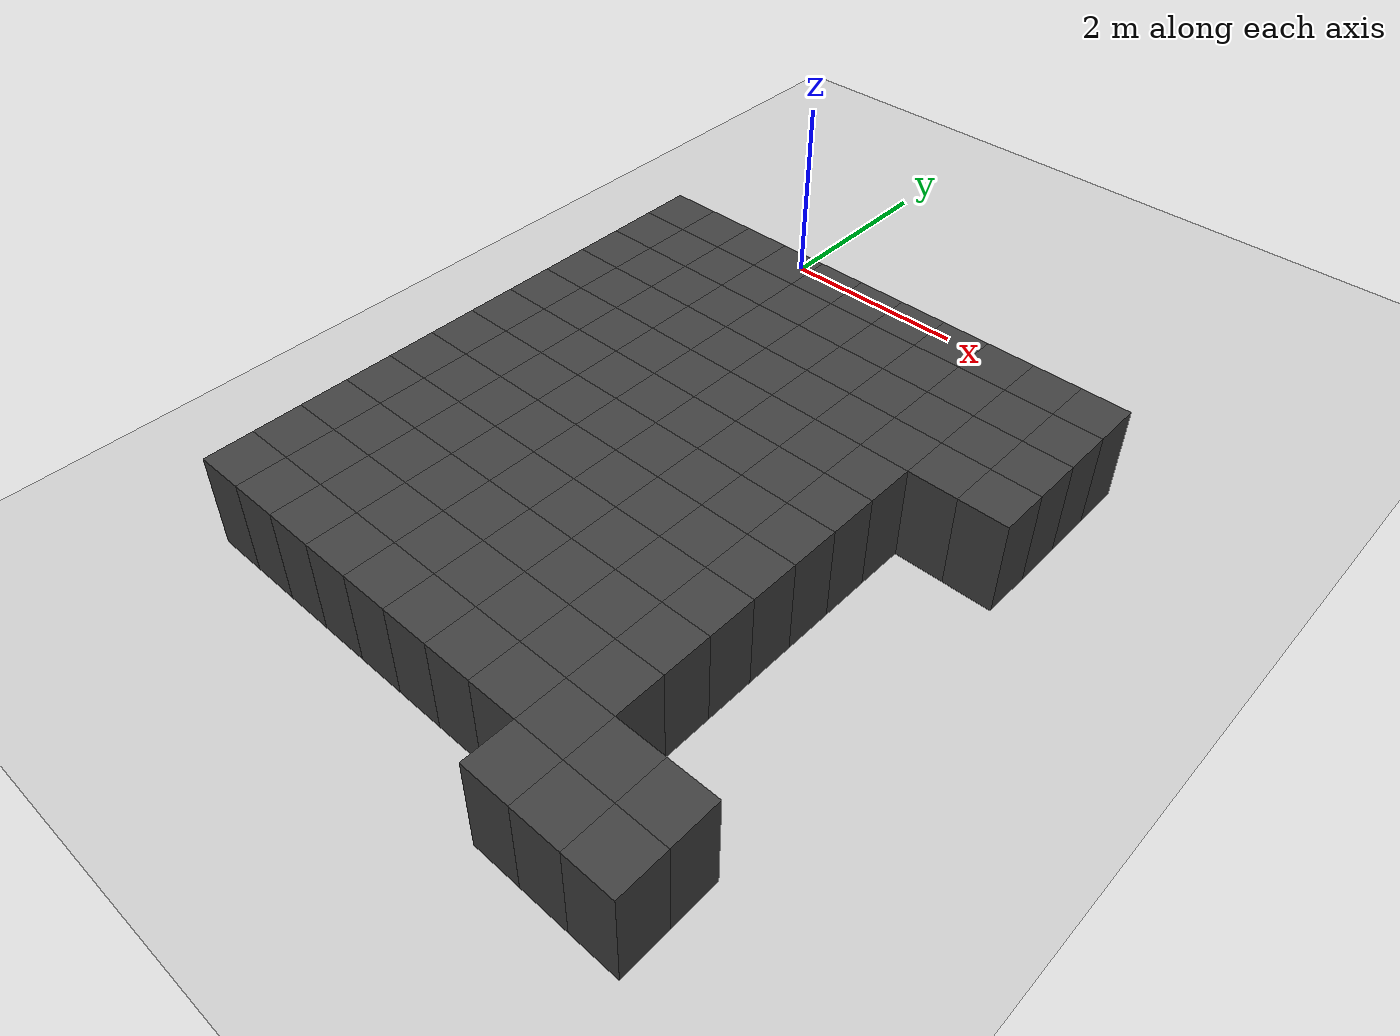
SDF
<sdf version="1.7">
 <world name="map_14706">
  <model name="ground_plane">
   <static>true</static>
   <link name="link">
    <collision name="collision">
     <geometry><plane><normal>0 0 1</normal><size>200 200</size></plane></geometry>
    </collision>
    <visual name="visual">
     <geometry><plane><normal>0 0 1</normal><size>200 200</size></plane></geometry>
     <material><ambient>0.8 0.8 0.8 1</ambient><diffuse>0.8 0.8 0.8 1</diffuse></material>
    </visual>
   </link>
  </model>
  <model name="maze_environment">
   <static>true</static>
   <link name="wall_921">
    <pose>-0.750 -1.250 0.500 0 0 0</pose>
    <collision name="col"><geometry><box><size>0.5 0.5 1.0</size></box></geometry></collision>
    <visual name="vis">
     <geometry><box><size>0.5 0.5 1.0</size></box></geometry>
     <material><ambient>0.15 0.15 0.15 1</ambient><diffuse>0.25 0.25 0.25 1</diffuse></material>
    </visual>
   </link>
   <link name="wall_922">
    <pose>-0.250 -1.250 0.500 0 0 0</pose>
    <collision name="col"><geometry><box><size>0.5 0.5 1.0</size></box></geometry></collision>
    <visual name="vis">
     <geometry><box><size>0.5 0.5 1.0</size></box></geometry>
     <material><ambient>0.15 0.15 0.15 1</ambient><diffuse>0.25 0.25 0.25 1</diffuse></material>
    </visual>
   </link>
   <link name="wall_923">
    <pose>0.250 -1.250 0.500 0 0 0</pose>
    <collision name="col"><geometry><box><size>0.5 0.5 1.0</size></box></geometry></collision>
    <visual name="vis">
     <geometry><box><size>0.5 0.5 1.0</size></box></geometry>
     <material><ambient>0.15 0.15 0.15 1</ambient><diffuse>0.25 0.25 0.25 1</diffuse></material>
    </visual>
   </link>
   <link name="wall_924">
    <pose>0.750 -1.250 0.500 0 0 0</pose>
    <collision name="col"><geometry><box><size>0.5 0.5 1.0</size></box></geometry></collision>
    <visual name="vis">
     <geometry><box><size>0.5 0.5 1.0</size></box></geometry>
     <material><ambient>0.15 0.15 0.15 1</ambient><diffuse>0.25 0.25 0.25 1</diffuse></material>
    </visual>
   </link>
   <link name="wall_925">
    <pose>1.250 -1.250 0.500 0 0 0</pose>
    <collision name="col"><geometry><box><size>0.5 0.5 1.0</size></box></geometry></collision>
    <visual name="vis">
     <geometry><box><size>0.5 0.5 1.0</size></box></geometry>
     <material><ambient>0.15 0.15 0.15 1</ambient><diffuse>0.25 0.25 0.25 1</diffuse></material>
    </visual>
   </link>
   <link name="wall_926">
    <pose>1.750 -1.250 0.500 0 0 0</pose>
    <collision name="col"><geometry><box><size>0.5 0.5 1.0</size></box></geometry></collision>
    <visual name="vis">
     <geometry><box><size>0.5 0.5 1.0</size></box></geometry>
     <material><ambient>0.15 0.15 0.15 1</ambient><diffuse>0.25 0.25 0.25 1</diffuse></material>
    </visual>
   </link>
   <link name="wall_927">
    <pose>2.250 -1.250 0.500 0 0 0</pose>
    <collision name="col"><geometry><box><size>0.5 0.5 1.0</size></box></geometry></collision>
    <visual name="vis">
     <geometry><box><size>0.5 0.5 1.0</size></box></geometry>
     <material><ambient>0.15 0.15 0.15 1</ambient><diffuse>0.25 0.25 0.25 1</diffuse></material>
    </visual>
   </link>
   <link name="wall_928">
    <pose>2.750 -1.250 0.500 0 0 0</pose>
    <collision name="col"><geometry><box><size>0.5 0.5 1.0</size></box></geometry></collision>
    <visual name="vis">
     <geometry><box><size>0.5 0.5 1.0</size></box></geometry>
     <material><ambient>0.15 0.15 0.15 1</ambient><diffuse>0.25 0.25 0.25 1</diffuse></material>
    </visual>
   </link>
   <link name="wall_929">
    <pose>3.250 -1.250 0.500 0 0 0</pose>
    <collision name="col"><geometry><box><size>0.5 0.5 1.0</size></box></geometry></collision>
    <visual name="vis">
     <geometry><box><size>0.5 0.5 1.0</size></box></geometry>
     <material><ambient>0.15 0.15 0.15 1</ambient><diffuse>0.25 0.25 0.25 1</diffuse></material>
    </visual>
   </link>
   <link name="wall_930">
    <pose>3.750 -1.250 0.500 0 0 0</pose>
    <collision name="col"><geometry><box><size>0.5 0.5 1.0</size></box></geometry></collision>
    <visual name="vis">
     <geometry><box><size>0.5 0.5 1.0</size></box></geometry>
     <material><ambient>0.15 0.15 0.15 1</ambient><diffuse>0.25 0.25 0.25 1</diffuse></material>
    </visual>
   </link>
   <link name="wall_931">
    <pose>4.250 -1.250 0.500 0 0 0</pose>
    <collision name="col"><geometry><box><size>0.5 0.5 1.0</size></box></geometry></collision>
    <visual name="vis">
     <geometry><box><size>0.5 0.5 1.0</size></box></geometry>
     <material><ambient>0.15 0.15 0.15 1</ambient><diffuse>0.25 0.25 0.25 1</diffuse></material>
    </visual>
   </link>
   <link name="wall_963">
    <pose>-0.750 -1.750 0.500 0 0 0</pose>
    <collision name="col"><geometry><box><size>0.5 0.5 1.0</size></box></geometry></collision>
    <visual name="vis">
     <geometry><box><size>0.5 0.5 1.0</size></box></geometry>
     <material><ambient>0.15 0.15 0.15 1</ambient><diffuse>0.25 0.25 0.25 1</diffuse></material>
    </visual>
   </link>
   <link name="wall_964">
    <pose>-0.250 -1.750 0.500 0 0 0</pose>
    <collision name="col"><geometry><box><size>0.5 0.5 1.0</size></box></geometry></collision>
    <visual name="vis">
     <geometry><box><size>0.5 0.5 1.0</size></box></geometry>
     <material><ambient>0.15 0.15 0.15 1</ambient><diffuse>0.25 0.25 0.25 1</diffuse></material>
    </visual>
   </link>
   <link name="wall_965">
    <pose>0.250 -1.750 0.500 0 0 0</pose>
    <collision name="col"><geometry><box><size>0.5 0.5 1.0</size></box></geometry></collision>
    <visual name="vis">
     <geometry><box><size>0.5 0.5 1.0</size></box></geometry>
     <material><ambient>0.15 0.15 0.15 1</ambient><diffuse>0.25 0.25 0.25 1</diffuse></material>
    </visual>
   </link>
   <link name="wall_966">
    <pose>0.750 -1.750 0.500 0 0 0</pose>
    <collision name="col"><geometry><box><size>0.5 0.5 1.0</size></box></geometry></collision>
    <visual name="vis">
     <geometry><box><size>0.5 0.5 1.0</size></box></geometry>
     <material><ambient>0.15 0.15 0.15 1</ambient><diffuse>0.25 0.25 0.25 1</diffuse></material>
    </visual>
   </link>
   <link name="wall_967">
    <pose>1.250 -1.750 0.500 0 0 0</pose>
    <collision name="col"><geometry><box><size>0.5 0.5 1.0</size></box></geometry></collision>
    <visual name="vis">
     <geometry><box><size>0.5 0.5 1.0</size></box></geometry>
     <material><ambient>0.15 0.15 0.15 1</ambient><diffuse>0.25 0.25 0.25 1</diffuse></material>
    </visual>
   </link>
   <link name="wall_968">
    <pose>1.750 -1.750 0.500 0 0 0</pose>
    <collision name="col"><geometry><box><size>0.5 0.5 1.0</size></box></geometry></collision>
    <visual name="vis">
     <geometry><box><size>0.5 0.5 1.0</size></box></geometry>
     <material><ambient>0.15 0.15 0.15 1</ambient><diffuse>0.25 0.25 0.25 1</diffuse></material>
    </visual>
   </link>
   <link name="wall_969">
    <pose>2.250 -1.750 0.500 0 0 0</pose>
    <collision name="col"><geometry><box><size>0.5 0.5 1.0</size></box></geometry></collision>
    <visual name="vis">
     <geometry><box><size>0.5 0.5 1.0</size></box></geometry>
     <material><ambient>0.15 0.15 0.15 1</ambient><diffuse>0.25 0.25 0.25 1</diffuse></material>
    </visual>
   </link>
   <link name="wall_970">
    <pose>2.750 -1.750 0.500 0 0 0</pose>
    <collision name="col"><geometry><box><size>0.5 0.5 1.0</size></box></geometry></collision>
    <visual name="vis">
     <geometry><box><size>0.5 0.5 1.0</size></box></geometry>
     <material><ambient>0.15 0.15 0.15 1</ambient><diffuse>0.25 0.25 0.25 1</diffuse></material>
    </visual>
   </link>
   <link name="wall_971">
    <pose>3.250 -1.750 0.500 0 0 0</pose>
    <collision name="col"><geometry><box><size>0.5 0.5 1.0</size></box></geometry></collision>
    <visual name="vis">
     <geometry><box><size>0.5 0.5 1.0</size></box></geometry>
     <material><ambient>0.15 0.15 0.15 1</ambient><diffuse>0.25 0.25 0.25 1</diffuse></material>
    </visual>
   </link>
   <link name="wall_972">
    <pose>3.750 -1.750 0.500 0 0 0</pose>
    <collision name="col"><geometry><box><size>0.5 0.5 1.0</size></box></geometry></collision>
    <visual name="vis">
     <geometry><box><size>0.5 0.5 1.0</size></box></geometry>
     <material><ambient>0.15 0.15 0.15 1</ambient><diffuse>0.25 0.25 0.25 1</diffuse></material>
    </visual>
   </link>
   <link name="wall_973">
    <pose>4.250 -1.750 0.500 0 0 0</pose>
    <collision name="col"><geometry><box><size>0.5 0.5 1.0</size></box></geometry></collision>
    <visual name="vis">
     <geometry><box><size>0.5 0.5 1.0</size></box></geometry>
     <material><ambient>0.15 0.15 0.15 1</ambient><diffuse>0.25 0.25 0.25 1</diffuse></material>
    </visual>
   </link>
   <link name="wall_1005">
    <pose>-0.750 -2.250 0.500 0 0 0</pose>
    <collision name="col"><geometry><box><size>0.5 0.5 1.0</size></box></geometry></collision>
    <visual name="vis">
     <geometry><box><size>0.5 0.5 1.0</size></box></geometry>
     <material><ambient>0.15 0.15 0.15 1</ambient><diffuse>0.25 0.25 0.25 1</diffuse></material>
    </visual>
   </link>
   <link name="wall_1006">
    <pose>-0.250 -2.250 0.500 0 0 0</pose>
    <collision name="col"><geometry><box><size>0.5 0.5 1.0</size></box></geometry></collision>
    <visual name="vis">
     <geometry><box><size>0.5 0.5 1.0</size></box></geometry>
     <material><ambient>0.15 0.15 0.15 1</ambient><diffuse>0.25 0.25 0.25 1</diffuse></material>
    </visual>
   </link>
   <link name="wall_1007">
    <pose>0.250 -2.250 0.500 0 0 0</pose>
    <collision name="col"><geometry><box><size>0.5 0.5 1.0</size></box></geometry></collision>
    <visual name="vis">
     <geometry><box><size>0.5 0.5 1.0</size></box></geometry>
     <material><ambient>0.15 0.15 0.15 1</ambient><diffuse>0.25 0.25 0.25 1</diffuse></material>
    </visual>
   </link>
   <link name="wall_1008">
    <pose>0.750 -2.250 0.500 0 0 0</pose>
    <collision name="col"><geometry><box><size>0.5 0.5 1.0</size></box></geometry></collision>
    <visual name="vis">
     <geometry><box><size>0.5 0.5 1.0</size></box></geometry>
     <material><ambient>0.15 0.15 0.15 1</ambient><diffuse>0.25 0.25 0.25 1</diffuse></material>
    </visual>
   </link>
   <link name="wall_1009">
    <pose>1.250 -2.250 0.500 0 0 0</pose>
    <collision name="col"><geometry><box><size>0.5 0.5 1.0</size></box></geometry></collision>
    <visual name="vis">
     <geometry><box><size>0.5 0.5 1.0</size></box></geometry>
     <material><ambient>0.15 0.15 0.15 1</ambient><diffuse>0.25 0.25 0.25 1</diffuse></material>
    </visual>
   </link>
   <link name="wall_1010">
    <pose>1.750 -2.250 0.500 0 0 0</pose>
    <collision name="col"><geometry><box><size>0.5 0.5 1.0</size></box></geometry></collision>
    <visual name="vis">
     <geometry><box><size>0.5 0.5 1.0</size></box></geometry>
     <material><ambient>0.15 0.15 0.15 1</ambient><diffuse>0.25 0.25 0.25 1</diffuse></material>
    </visual>
   </link>
   <link name="wall_1011">
    <pose>2.250 -2.250 0.500 0 0 0</pose>
    <collision name="col"><geometry><box><size>0.5 0.5 1.0</size></box></geometry></collision>
    <visual name="vis">
     <geometry><box><size>0.5 0.5 1.0</size></box></geometry>
     <material><ambient>0.15 0.15 0.15 1</ambient><diffuse>0.25 0.25 0.25 1</diffuse></material>
    </visual>
   </link>
   <link name="wall_1012">
    <pose>2.750 -2.250 0.500 0 0 0</pose>
    <collision name="col"><geometry><box><size>0.5 0.5 1.0</size></box></geometry></collision>
    <visual name="vis">
     <geometry><box><size>0.5 0.5 1.0</size></box></geometry>
     <material><ambient>0.15 0.15 0.15 1</ambient><diffuse>0.25 0.25 0.25 1</diffuse></material>
    </visual>
   </link>
   <link name="wall_1013">
    <pose>3.250 -2.250 0.500 0 0 0</pose>
    <collision name="col"><geometry><box><size>0.5 0.5 1.0</size></box></geometry></collision>
    <visual name="vis">
     <geometry><box><size>0.5 0.5 1.0</size></box></geometry>
     <material><ambient>0.15 0.15 0.15 1</ambient><diffuse>0.25 0.25 0.25 1</diffuse></material>
    </visual>
   </link>
   <link name="wall_1014">
    <pose>3.750 -2.250 0.500 0 0 0</pose>
    <collision name="col"><geometry><box><size>0.5 0.5 1.0</size></box></geometry></collision>
    <visual name="vis">
     <geometry><box><size>0.5 0.5 1.0</size></box></geometry>
     <material><ambient>0.15 0.15 0.15 1</ambient><diffuse>0.25 0.25 0.25 1</diffuse></material>
    </visual>
   </link>
   <link name="wall_1015">
    <pose>4.250 -2.250 0.500 0 0 0</pose>
    <collision name="col"><geometry><box><size>0.5 0.5 1.0</size></box></geometry></collision>
    <visual name="vis">
     <geometry><box><size>0.5 0.5 1.0</size></box></geometry>
     <material><ambient>0.15 0.15 0.15 1</ambient><diffuse>0.25 0.25 0.25 1</diffuse></material>
    </visual>
   </link>
   <link name="wall_1047">
    <pose>-0.750 -2.750 0.500 0 0 0</pose>
    <collision name="col"><geometry><box><size>0.5 0.5 1.0</size></box></geometry></collision>
    <visual name="vis">
     <geometry><box><size>0.5 0.5 1.0</size></box></geometry>
     <material><ambient>0.15 0.15 0.15 1</ambient><diffuse>0.25 0.25 0.25 1</diffuse></material>
    </visual>
   </link>
   <link name="wall_1048">
    <pose>-0.250 -2.750 0.500 0 0 0</pose>
    <collision name="col"><geometry><box><size>0.5 0.5 1.0</size></box></geometry></collision>
    <visual name="vis">
     <geometry><box><size>0.5 0.5 1.0</size></box></geometry>
     <material><ambient>0.15 0.15 0.15 1</ambient><diffuse>0.25 0.25 0.25 1</diffuse></material>
    </visual>
   </link>
   <link name="wall_1049">
    <pose>0.250 -2.750 0.500 0 0 0</pose>
    <collision name="col"><geometry><box><size>0.5 0.5 1.0</size></box></geometry></collision>
    <visual name="vis">
     <geometry><box><size>0.5 0.5 1.0</size></box></geometry>
     <material><ambient>0.15 0.15 0.15 1</ambient><diffuse>0.25 0.25 0.25 1</diffuse></material>
    </visual>
   </link>
   <link name="wall_1050">
    <pose>0.750 -2.750 0.500 0 0 0</pose>
    <collision name="col"><geometry><box><size>0.5 0.5 1.0</size></box></geometry></collision>
    <visual name="vis">
     <geometry><box><size>0.5 0.5 1.0</size></box></geometry>
     <material><ambient>0.15 0.15 0.15 1</ambient><diffuse>0.25 0.25 0.25 1</diffuse></material>
    </visual>
   </link>
   <link name="wall_1051">
    <pose>1.250 -2.750 0.500 0 0 0</pose>
    <collision name="col"><geometry><box><size>0.5 0.5 1.0</size></box></geometry></collision>
    <visual name="vis">
     <geometry><box><size>0.5 0.5 1.0</size></box></geometry>
     <material><ambient>0.15 0.15 0.15 1</ambient><diffuse>0.25 0.25 0.25 1</diffuse></material>
    </visual>
   </link>
   <link name="wall_1052">
    <pose>1.750 -2.750 0.500 0 0 0</pose>
    <collision name="col"><geometry><box><size>0.5 0.5 1.0</size></box></geometry></collision>
    <visual name="vis">
     <geometry><box><size>0.5 0.5 1.0</size></box></geometry>
     <material><ambient>0.15 0.15 0.15 1</ambient><diffuse>0.25 0.25 0.25 1</diffuse></material>
    </visual>
   </link>
   <link name="wall_1053">
    <pose>2.250 -2.750 0.500 0 0 0</pose>
    <collision name="col"><geometry><box><size>0.5 0.5 1.0</size></box></geometry></collision>
    <visual name="vis">
     <geometry><box><size>0.5 0.5 1.0</size></box></geometry>
     <material><ambient>0.15 0.15 0.15 1</ambient><diffuse>0.25 0.25 0.25 1</diffuse></material>
    </visual>
   </link>
   <link name="wall_1054">
    <pose>2.750 -2.750 0.500 0 0 0</pose>
    <collision name="col"><geometry><box><size>0.5 0.5 1.0</size></box></geometry></collision>
    <visual name="vis">
     <geometry><box><size>0.5 0.5 1.0</size></box></geometry>
     <material><ambient>0.15 0.15 0.15 1</ambient><diffuse>0.25 0.25 0.25 1</diffuse></material>
    </visual>
   </link>
   <link name="wall_1055">
    <pose>3.250 -2.750 0.500 0 0 0</pose>
    <collision name="col"><geometry><box><size>0.5 0.5 1.0</size></box></geometry></collision>
    <visual name="vis">
     <geometry><box><size>0.5 0.5 1.0</size></box></geometry>
     <material><ambient>0.15 0.15 0.15 1</ambient><diffuse>0.25 0.25 0.25 1</diffuse></material>
    </visual>
   </link>
   <link name="wall_1056">
    <pose>3.750 -2.750 0.500 0 0 0</pose>
    <collision name="col"><geometry><box><size>0.5 0.5 1.0</size></box></geometry></collision>
    <visual name="vis">
     <geometry><box><size>0.5 0.5 1.0</size></box></geometry>
     <material><ambient>0.15 0.15 0.15 1</ambient><diffuse>0.25 0.25 0.25 1</diffuse></material>
    </visual>
   </link>
   <link name="wall_1057">
    <pose>4.250 -2.750 0.500 0 0 0</pose>
    <collision name="col"><geometry><box><size>0.5 0.5 1.0</size></box></geometry></collision>
    <visual name="vis">
     <geometry><box><size>0.5 0.5 1.0</size></box></geometry>
     <material><ambient>0.15 0.15 0.15 1</ambient><diffuse>0.25 0.25 0.25 1</diffuse></material>
    </visual>
   </link>
   <link name="wall_1089">
    <pose>-0.750 -3.250 0.500 0 0 0</pose>
    <collision name="col"><geometry><box><size>0.5 0.5 1.0</size></box></geometry></collision>
    <visual name="vis">
     <geometry><box><size>0.5 0.5 1.0</size></box></geometry>
     <material><ambient>0.15 0.15 0.15 1</ambient><diffuse>0.25 0.25 0.25 1</diffuse></material>
    </visual>
   </link>
   <link name="wall_1090">
    <pose>-0.250 -3.250 0.500 0 0 0</pose>
    <collision name="col"><geometry><box><size>0.5 0.5 1.0</size></box></geometry></collision>
    <visual name="vis">
     <geometry><box><size>0.5 0.5 1.0</size></box></geometry>
     <material><ambient>0.15 0.15 0.15 1</ambient><diffuse>0.25 0.25 0.25 1</diffuse></material>
    </visual>
   </link>
   <link name="wall_1091">
    <pose>0.250 -3.250 0.500 0 0 0</pose>
    <collision name="col"><geometry><box><size>0.5 0.5 1.0</size></box></geometry></collision>
    <visual name="vis">
     <geometry><box><size>0.5 0.5 1.0</size></box></geometry>
     <material><ambient>0.15 0.15 0.15 1</ambient><diffuse>0.25 0.25 0.25 1</diffuse></material>
    </visual>
   </link>
   <link name="wall_1092">
    <pose>0.750 -3.250 0.500 0 0 0</pose>
    <collision name="col"><geometry><box><size>0.5 0.5 1.0</size></box></geometry></collision>
    <visual name="vis">
     <geometry><box><size>0.5 0.5 1.0</size></box></geometry>
     <material><ambient>0.15 0.15 0.15 1</ambient><diffuse>0.25 0.25 0.25 1</diffuse></material>
    </visual>
   </link>
   <link name="wall_1093">
    <pose>1.250 -3.250 0.500 0 0 0</pose>
    <collision name="col"><geometry><box><size>0.5 0.5 1.0</size></box></geometry></collision>
    <visual name="vis">
     <geometry><box><size>0.5 0.5 1.0</size></box></geometry>
     <material><ambient>0.15 0.15 0.15 1</ambient><diffuse>0.25 0.25 0.25 1</diffuse></material>
    </visual>
   </link>
   <link name="wall_1094">
    <pose>1.750 -3.250 0.500 0 0 0</pose>
    <collision name="col"><geometry><box><size>0.5 0.5 1.0</size></box></geometry></collision>
    <visual name="vis">
     <geometry><box><size>0.5 0.5 1.0</size></box></geometry>
     <material><ambient>0.15 0.15 0.15 1</ambient><diffuse>0.25 0.25 0.25 1</diffuse></material>
    </visual>
   </link>
   <link name="wall_1095">
    <pose>2.250 -3.250 0.500 0 0 0</pose>
    <collision name="col"><geometry><box><size>0.5 0.5 1.0</size></box></geometry></collision>
    <visual name="vis">
     <geometry><box><size>0.5 0.5 1.0</size></box></geometry>
     <material><ambient>0.15 0.15 0.15 1</ambient><diffuse>0.25 0.25 0.25 1</diffuse></material>
    </visual>
   </link>
   <link name="wall_1096">
    <pose>2.750 -3.250 0.500 0 0 0</pose>
    <collision name="col"><geometry><box><size>0.5 0.5 1.0</size></box></geometry></collision>
    <visual name="vis">
     <geometry><box><size>0.5 0.5 1.0</size></box></geometry>
     <material><ambient>0.15 0.15 0.15 1</ambient><diffuse>0.25 0.25 0.25 1</diffuse></material>
    </visual>
   </link>
   <link name="wall_1097">
    <pose>3.250 -3.250 0.500 0 0 0</pose>
    <collision name="col"><geometry><box><size>0.5 0.5 1.0</size></box></geometry></collision>
    <visual name="vis">
     <geometry><box><size>0.5 0.5 1.0</size></box></geometry>
     <material><ambient>0.15 0.15 0.15 1</ambient><diffuse>0.25 0.25 0.25 1</diffuse></material>
    </visual>
   </link>
   <link name="wall_1132">
    <pose>-0.750 -3.750 0.500 0 0 0</pose>
    <collision name="col"><geometry><box><size>0.5 0.5 1.0</size></box></geometry></collision>
    <visual name="vis">
     <geometry><box><size>0.5 0.5 1.0</size></box></geometry>
     <material><ambient>0.15 0.15 0.15 1</ambient><diffuse>0.25 0.25 0.25 1</diffuse></material>
    </visual>
   </link>
   <link name="wall_1133">
    <pose>-0.250 -3.750 0.500 0 0 0</pose>
    <collision name="col"><geometry><box><size>0.5 0.5 1.0</size></box></geometry></collision>
    <visual name="vis">
     <geometry><box><size>0.5 0.5 1.0</size></box></geometry>
     <material><ambient>0.15 0.15 0.15 1</ambient><diffuse>0.25 0.25 0.25 1</diffuse></material>
    </visual>
   </link>
   <link name="wall_1134">
    <pose>0.250 -3.750 0.500 0 0 0</pose>
    <collision name="col"><geometry><box><size>0.5 0.5 1.0</size></box></geometry></collision>
    <visual name="vis">
     <geometry><box><size>0.5 0.5 1.0</size></box></geometry>
     <material><ambient>0.15 0.15 0.15 1</ambient><diffuse>0.25 0.25 0.25 1</diffuse></material>
    </visual>
   </link>
   <link name="wall_1135">
    <pose>0.750 -3.750 0.500 0 0 0</pose>
    <collision name="col"><geometry><box><size>0.5 0.5 1.0</size></box></geometry></collision>
    <visual name="vis">
     <geometry><box><size>0.5 0.5 1.0</size></box></geometry>
     <material><ambient>0.15 0.15 0.15 1</ambient><diffuse>0.25 0.25 0.25 1</diffuse></material>
    </visual>
   </link>
   <link name="wall_1136">
    <pose>1.250 -3.750 0.500 0 0 0</pose>
    <collision name="col"><geometry><box><size>0.5 0.5 1.0</size></box></geometry></collision>
    <visual name="vis">
     <geometry><box><size>0.5 0.5 1.0</size></box></geometry>
     <material><ambient>0.15 0.15 0.15 1</ambient><diffuse>0.25 0.25 0.25 1</diffuse></material>
    </visual>
   </link>
   <link name="wall_1137">
    <pose>1.750 -3.750 0.500 0 0 0</pose>
    <collision name="col"><geometry><box><size>0.5 0.5 1.0</size></box></geometry></collision>
    <visual name="vis">
     <geometry><box><size>0.5 0.5 1.0</size></box></geometry>
     <material><ambient>0.15 0.15 0.15 1</ambient><diffuse>0.25 0.25 0.25 1</diffuse></material>
    </visual>
   </link>
   <link name="wall_1138">
    <pose>2.250 -3.750 0.500 0 0 0</pose>
    <collision name="col"><geometry><box><size>0.5 0.5 1.0</size></box></geometry></collision>
    <visual name="vis">
     <geometry><box><size>0.5 0.5 1.0</size></box></geometry>
     <material><ambient>0.15 0.15 0.15 1</ambient><diffuse>0.25 0.25 0.25 1</diffuse></material>
    </visual>
   </link>
   <link name="wall_1139">
    <pose>2.750 -3.750 0.500 0 0 0</pose>
    <collision name="col"><geometry><box><size>0.5 0.5 1.0</size></box></geometry></collision>
    <visual name="vis">
     <geometry><box><size>0.5 0.5 1.0</size></box></geometry>
     <material><ambient>0.15 0.15 0.15 1</ambient><diffuse>0.25 0.25 0.25 1</diffuse></material>
    </visual>
   </link>
   <link name="wall_1140">
    <pose>3.250 -3.750 0.500 0 0 0</pose>
    <collision name="col"><geometry><box><size>0.5 0.5 1.0</size></box></geometry></collision>
    <visual name="vis">
     <geometry><box><size>0.5 0.5 1.0</size></box></geometry>
     <material><ambient>0.15 0.15 0.15 1</ambient><diffuse>0.25 0.25 0.25 1</diffuse></material>
    </visual>
   </link>
   <link name="wall_1175">
    <pose>-0.750 -4.250 0.500 0 0 0</pose>
    <collision name="col"><geometry><box><size>0.5 0.5 1.0</size></box></geometry></collision>
    <visual name="vis">
     <geometry><box><size>0.5 0.5 1.0</size></box></geometry>
     <material><ambient>0.15 0.15 0.15 1</ambient><diffuse>0.25 0.25 0.25 1</diffuse></material>
    </visual>
   </link>
   <link name="wall_1176">
    <pose>-0.250 -4.250 0.500 0 0 0</pose>
    <collision name="col"><geometry><box><size>0.5 0.5 1.0</size></box></geometry></collision>
    <visual name="vis">
     <geometry><box><size>0.5 0.5 1.0</size></box></geometry>
     <material><ambient>0.15 0.15 0.15 1</ambient><diffuse>0.25 0.25 0.25 1</diffuse></material>
    </visual>
   </link>
   <link name="wall_1177">
    <pose>0.250 -4.250 0.500 0 0 0</pose>
    <collision name="col"><geometry><box><size>0.5 0.5 1.0</size></box></geometry></collision>
    <visual name="vis">
     <geometry><box><size>0.5 0.5 1.0</size></box></geometry>
     <material><ambient>0.15 0.15 0.15 1</ambient><diffuse>0.25 0.25 0.25 1</diffuse></material>
    </visual>
   </link>
   <link name="wall_1178">
    <pose>0.750 -4.250 0.500 0 0 0</pose>
    <collision name="col"><geometry><box><size>0.5 0.5 1.0</size></box></geometry></collision>
    <visual name="vis">
     <geometry><box><size>0.5 0.5 1.0</size></box></geometry>
     <material><ambient>0.15 0.15 0.15 1</ambient><diffuse>0.25 0.25 0.25 1</diffuse></material>
    </visual>
   </link>
   <link name="wall_1179">
    <pose>1.250 -4.250 0.500 0 0 0</pose>
    <collision name="col"><geometry><box><size>0.5 0.5 1.0</size></box></geometry></collision>
    <visual name="vis">
     <geometry><box><size>0.5 0.5 1.0</size></box></geometry>
     <material><ambient>0.15 0.15 0.15 1</ambient><diffuse>0.25 0.25 0.25 1</diffuse></material>
    </visual>
   </link>
   <link name="wall_1180">
    <pose>1.750 -4.250 0.500 0 0 0</pose>
    <collision name="col"><geometry><box><size>0.5 0.5 1.0</size></box></geometry></collision>
    <visual name="vis">
     <geometry><box><size>0.5 0.5 1.0</size></box></geometry>
     <material><ambient>0.15 0.15 0.15 1</ambient><diffuse>0.25 0.25 0.25 1</diffuse></material>
    </visual>
   </link>
   <link name="wall_1181">
    <pose>2.250 -4.250 0.500 0 0 0</pose>
    <collision name="col"><geometry><box><size>0.5 0.5 1.0</size></box></geometry></collision>
    <visual name="vis">
     <geometry><box><size>0.5 0.5 1.0</size></box></geometry>
     <material><ambient>0.15 0.15 0.15 1</ambient><diffuse>0.25 0.25 0.25 1</diffuse></material>
    </visual>
   </link>
   <link name="wall_1182">
    <pose>2.750 -4.250 0.500 0 0 0</pose>
    <collision name="col"><geometry><box><size>0.5 0.5 1.0</size></box></geometry></collision>
    <visual name="vis">
     <geometry><box><size>0.5 0.5 1.0</size></box></geometry>
     <material><ambient>0.15 0.15 0.15 1</ambient><diffuse>0.25 0.25 0.25 1</diffuse></material>
    </visual>
   </link>
   <link name="wall_1183">
    <pose>3.250 -4.250 0.500 0 0 0</pose>
    <collision name="col"><geometry><box><size>0.5 0.5 1.0</size></box></geometry></collision>
    <visual name="vis">
     <geometry><box><size>0.5 0.5 1.0</size></box></geometry>
     <material><ambient>0.15 0.15 0.15 1</ambient><diffuse>0.25 0.25 0.25 1</diffuse></material>
    </visual>
   </link>
   <link name="wall_1218">
    <pose>-0.750 -4.750 0.500 0 0 0</pose>
    <collision name="col"><geometry><box><size>0.5 0.5 1.0</size></box></geometry></collision>
    <visual name="vis">
     <geometry><box><size>0.5 0.5 1.0</size></box></geometry>
     <material><ambient>0.15 0.15 0.15 1</ambient><diffuse>0.25 0.25 0.25 1</diffuse></material>
    </visual>
   </link>
   <link name="wall_1219">
    <pose>-0.250 -4.750 0.500 0 0 0</pose>
    <collision name="col"><geometry><box><size>0.5 0.5 1.0</size></box></geometry></collision>
    <visual name="vis">
     <geometry><box><size>0.5 0.5 1.0</size></box></geometry>
     <material><ambient>0.15 0.15 0.15 1</ambient><diffuse>0.25 0.25 0.25 1</diffuse></material>
    </visual>
   </link>
   <link name="wall_1220">
    <pose>0.250 -4.750 0.500 0 0 0</pose>
    <collision name="col"><geometry><box><size>0.5 0.5 1.0</size></box></geometry></collision>
    <visual name="vis">
     <geometry><box><size>0.5 0.5 1.0</size></box></geometry>
     <material><ambient>0.15 0.15 0.15 1</ambient><diffuse>0.25 0.25 0.25 1</diffuse></material>
    </visual>
   </link>
   <link name="wall_1221">
    <pose>0.750 -4.750 0.500 0 0 0</pose>
    <collision name="col"><geometry><box><size>0.5 0.5 1.0</size></box></geometry></collision>
    <visual name="vis">
     <geometry><box><size>0.5 0.5 1.0</size></box></geometry>
     <material><ambient>0.15 0.15 0.15 1</ambient><diffuse>0.25 0.25 0.25 1</diffuse></material>
    </visual>
   </link>
   <link name="wall_1222">
    <pose>1.250 -4.750 0.500 0 0 0</pose>
    <collision name="col"><geometry><box><size>0.5 0.5 1.0</size></box></geometry></collision>
    <visual name="vis">
     <geometry><box><size>0.5 0.5 1.0</size></box></geometry>
     <material><ambient>0.15 0.15 0.15 1</ambient><diffuse>0.25 0.25 0.25 1</diffuse></material>
    </visual>
   </link>
   <link name="wall_1223">
    <pose>1.750 -4.750 0.500 0 0 0</pose>
    <collision name="col"><geometry><box><size>0.5 0.5 1.0</size></box></geometry></collision>
    <visual name="vis">
     <geometry><box><size>0.5 0.5 1.0</size></box></geometry>
     <material><ambient>0.15 0.15 0.15 1</ambient><diffuse>0.25 0.25 0.25 1</diffuse></material>
    </visual>
   </link>
   <link name="wall_1224">
    <pose>2.250 -4.750 0.500 0 0 0</pose>
    <collision name="col"><geometry><box><size>0.5 0.5 1.0</size></box></geometry></collision>
    <visual name="vis">
     <geometry><box><size>0.5 0.5 1.0</size></box></geometry>
     <material><ambient>0.15 0.15 0.15 1</ambient><diffuse>0.25 0.25 0.25 1</diffuse></material>
    </visual>
   </link>
   <link name="wall_1225">
    <pose>2.750 -4.750 0.500 0 0 0</pose>
    <collision name="col"><geometry><box><size>0.5 0.5 1.0</size></box></geometry></collision>
    <visual name="vis">
     <geometry><box><size>0.5 0.5 1.0</size></box></geometry>
     <material><ambient>0.15 0.15 0.15 1</ambient><diffuse>0.25 0.25 0.25 1</diffuse></material>
    </visual>
   </link>
   <link name="wall_1226">
    <pose>3.250 -4.750 0.500 0 0 0</pose>
    <collision name="col"><geometry><box><size>0.5 0.5 1.0</size></box></geometry></collision>
    <visual name="vis">
     <geometry><box><size>0.5 0.5 1.0</size></box></geometry>
     <material><ambient>0.15 0.15 0.15 1</ambient><diffuse>0.25 0.25 0.25 1</diffuse></material>
    </visual>
   </link>
   <link name="wall_1254">
    <pose>-0.750 -5.250 0.500 0 0 0</pose>
    <collision name="col"><geometry><box><size>0.5 0.5 1.0</size></box></geometry></collision>
    <visual name="vis">
     <geometry><box><size>0.5 0.5 1.0</size></box></geometry>
     <material><ambient>0.15 0.15 0.15 1</ambient><diffuse>0.25 0.25 0.25 1</diffuse></material>
    </visual>
   </link>
   <link name="wall_1255">
    <pose>-0.250 -5.250 0.500 0 0 0</pose>
    <collision name="col"><geometry><box><size>0.5 0.5 1.0</size></box></geometry></collision>
    <visual name="vis">
     <geometry><box><size>0.5 0.5 1.0</size></box></geometry>
     <material><ambient>0.15 0.15 0.15 1</ambient><diffuse>0.25 0.25 0.25 1</diffuse></material>
    </visual>
   </link>
   <link name="wall_1256">
    <pose>0.250 -5.250 0.500 0 0 0</pose>
    <collision name="col"><geometry><box><size>0.5 0.5 1.0</size></box></geometry></collision>
    <visual name="vis">
     <geometry><box><size>0.5 0.5 1.0</size></box></geometry>
     <material><ambient>0.15 0.15 0.15 1</ambient><diffuse>0.25 0.25 0.25 1</diffuse></material>
    </visual>
   </link>
   <link name="wall_1257">
    <pose>0.750 -5.250 0.500 0 0 0</pose>
    <collision name="col"><geometry><box><size>0.5 0.5 1.0</size></box></geometry></collision>
    <visual name="vis">
     <geometry><box><size>0.5 0.5 1.0</size></box></geometry>
     <material><ambient>0.15 0.15 0.15 1</ambient><diffuse>0.25 0.25 0.25 1</diffuse></material>
    </visual>
   </link>
   <link name="wall_1258">
    <pose>1.250 -5.250 0.500 0 0 0</pose>
    <collision name="col"><geometry><box><size>0.5 0.5 1.0</size></box></geometry></collision>
    <visual name="vis">
     <geometry><box><size>0.5 0.5 1.0</size></box></geometry>
     <material><ambient>0.15 0.15 0.15 1</ambient><diffuse>0.25 0.25 0.25 1</diffuse></material>
    </visual>
   </link>
   <link name="wall_1259">
    <pose>1.750 -5.250 0.500 0 0 0</pose>
    <collision name="col"><geometry><box><size>0.5 0.5 1.0</size></box></geometry></collision>
    <visual name="vis">
     <geometry><box><size>0.5 0.5 1.0</size></box></geometry>
     <material><ambient>0.15 0.15 0.15 1</ambient><diffuse>0.25 0.25 0.25 1</diffuse></material>
    </visual>
   </link>
   <link name="wall_1260">
    <pose>2.250 -5.250 0.500 0 0 0</pose>
    <collision name="col"><geometry><box><size>0.5 0.5 1.0</size></box></geometry></collision>
    <visual name="vis">
     <geometry><box><size>0.5 0.5 1.0</size></box></geometry>
     <material><ambient>0.15 0.15 0.15 1</ambient><diffuse>0.25 0.25 0.25 1</diffuse></material>
    </visual>
   </link>
   <link name="wall_1261">
    <pose>2.750 -5.250 0.500 0 0 0</pose>
    <collision name="col"><geometry><box><size>0.5 0.5 1.0</size></box></geometry></collision>
    <visual name="vis">
     <geometry><box><size>0.5 0.5 1.0</size></box></geometry>
     <material><ambient>0.15 0.15 0.15 1</ambient><diffuse>0.25 0.25 0.25 1</diffuse></material>
    </visual>
   </link>
   <link name="wall_1262">
    <pose>3.250 -5.250 0.500 0 0 0</pose>
    <collision name="col"><geometry><box><size>0.5 0.5 1.0</size></box></geometry></collision>
    <visual name="vis">
     <geometry><box><size>0.5 0.5 1.0</size></box></geometry>
     <material><ambient>0.15 0.15 0.15 1</ambient><diffuse>0.25 0.25 0.25 1</diffuse></material>
    </visual>
   </link>
   <link name="wall_1291">
    <pose>-0.750 -5.750 0.500 0 0 0</pose>
    <collision name="col"><geometry><box><size>0.5 0.5 1.0</size></box></geometry></collision>
    <visual name="vis">
     <geometry><box><size>0.5 0.5 1.0</size></box></geometry>
     <material><ambient>0.15 0.15 0.15 1</ambient><diffuse>0.25 0.25 0.25 1</diffuse></material>
    </visual>
   </link>
   <link name="wall_1292">
    <pose>-0.250 -5.750 0.500 0 0 0</pose>
    <collision name="col"><geometry><box><size>0.5 0.5 1.0</size></box></geometry></collision>
    <visual name="vis">
     <geometry><box><size>0.5 0.5 1.0</size></box></geometry>
     <material><ambient>0.15 0.15 0.15 1</ambient><diffuse>0.25 0.25 0.25 1</diffuse></material>
    </visual>
   </link>
   <link name="wall_1293">
    <pose>0.250 -5.750 0.500 0 0 0</pose>
    <collision name="col"><geometry><box><size>0.5 0.5 1.0</size></box></geometry></collision>
    <visual name="vis">
     <geometry><box><size>0.5 0.5 1.0</size></box></geometry>
     <material><ambient>0.15 0.15 0.15 1</ambient><diffuse>0.25 0.25 0.25 1</diffuse></material>
    </visual>
   </link>
   <link name="wall_1294">
    <pose>0.750 -5.750 0.500 0 0 0</pose>
    <collision name="col"><geometry><box><size>0.5 0.5 1.0</size></box></geometry></collision>
    <visual name="vis">
     <geometry><box><size>0.5 0.5 1.0</size></box></geometry>
     <material><ambient>0.15 0.15 0.15 1</ambient><diffuse>0.25 0.25 0.25 1</diffuse></material>
    </visual>
   </link>
   <link name="wall_1295">
    <pose>1.250 -5.750 0.500 0 0 0</pose>
    <collision name="col"><geometry><box><size>0.5 0.5 1.0</size></box></geometry></collision>
    <visual name="vis">
     <geometry><box><size>0.5 0.5 1.0</size></box></geometry>
     <material><ambient>0.15 0.15 0.15 1</ambient><diffuse>0.25 0.25 0.25 1</diffuse></material>
    </visual>
   </link>
   <link name="wall_1296">
    <pose>1.750 -5.750 0.500 0 0 0</pose>
    <collision name="col"><geometry><box><size>0.5 0.5 1.0</size></box></geometry></collision>
    <visual name="vis">
     <geometry><box><size>0.5 0.5 1.0</size></box></geometry>
     <material><ambient>0.15 0.15 0.15 1</ambient><diffuse>0.25 0.25 0.25 1</diffuse></material>
    </visual>
   </link>
   <link name="wall_1297">
    <pose>2.250 -5.750 0.500 0 0 0</pose>
    <collision name="col"><geometry><box><size>0.5 0.5 1.0</size></box></geometry></collision>
    <visual name="vis">
     <geometry><box><size>0.5 0.5 1.0</size></box></geometry>
     <material><ambient>0.15 0.15 0.15 1</ambient><diffuse>0.25 0.25 0.25 1</diffuse></material>
    </visual>
   </link>
   <link name="wall_1298">
    <pose>2.750 -5.750 0.500 0 0 0</pose>
    <collision name="col"><geometry><box><size>0.5 0.5 1.0</size></box></geometry></collision>
    <visual name="vis">
     <geometry><box><size>0.5 0.5 1.0</size></box></geometry>
     <material><ambient>0.15 0.15 0.15 1</ambient><diffuse>0.25 0.25 0.25 1</diffuse></material>
    </visual>
   </link>
   <link name="wall_1299">
    <pose>3.250 -5.750 0.500 0 0 0</pose>
    <collision name="col"><geometry><box><size>0.5 0.5 1.0</size></box></geometry></collision>
    <visual name="vis">
     <geometry><box><size>0.5 0.5 1.0</size></box></geometry>
     <material><ambient>0.15 0.15 0.15 1</ambient><diffuse>0.25 0.25 0.25 1</diffuse></material>
    </visual>
   </link>
   <link name="wall_1328">
    <pose>-0.750 -6.250 0.500 0 0 0</pose>
    <collision name="col"><geometry><box><size>0.5 0.5 1.0</size></box></geometry></collision>
    <visual name="vis">
     <geometry><box><size>0.5 0.5 1.0</size></box></geometry>
     <material><ambient>0.15 0.15 0.15 1</ambient><diffuse>0.25 0.25 0.25 1</diffuse></material>
    </visual>
   </link>
   <link name="wall_1329">
    <pose>-0.250 -6.250 0.500 0 0 0</pose>
    <collision name="col"><geometry><box><size>0.5 0.5 1.0</size></box></geometry></collision>
    <visual name="vis">
     <geometry><box><size>0.5 0.5 1.0</size></box></geometry>
     <material><ambient>0.15 0.15 0.15 1</ambient><diffuse>0.25 0.25 0.25 1</diffuse></material>
    </visual>
   </link>
   <link name="wall_1330">
    <pose>0.250 -6.250 0.500 0 0 0</pose>
    <collision name="col"><geometry><box><size>0.5 0.5 1.0</size></box></geometry></collision>
    <visual name="vis">
     <geometry><box><size>0.5 0.5 1.0</size></box></geometry>
     <material><ambient>0.15 0.15 0.15 1</ambient><diffuse>0.25 0.25 0.25 1</diffuse></material>
    </visual>
   </link>
   <link name="wall_1331">
    <pose>0.750 -6.250 0.500 0 0 0</pose>
    <collision name="col"><geometry><box><size>0.5 0.5 1.0</size></box></geometry></collision>
    <visual name="vis">
     <geometry><box><size>0.5 0.5 1.0</size></box></geometry>
     <material><ambient>0.15 0.15 0.15 1</ambient><diffuse>0.25 0.25 0.25 1</diffuse></material>
    </visual>
   </link>
   <link name="wall_1332">
    <pose>1.250 -6.250 0.500 0 0 0</pose>
    <collision name="col"><geometry><box><size>0.5 0.5 1.0</size></box></geometry></collision>
    <visual name="vis">
     <geometry><box><size>0.5 0.5 1.0</size></box></geometry>
     <material><ambient>0.15 0.15 0.15 1</ambient><diffuse>0.25 0.25 0.25 1</diffuse></material>
    </visual>
   </link>
   <link name="wall_1333">
    <pose>1.750 -6.250 0.500 0 0 0</pose>
    <collision name="col"><geometry><box><size>0.5 0.5 1.0</size></box></geometry></collision>
    <visual name="vis">
     <geometry><box><size>0.5 0.5 1.0</size></box></geometry>
     <material><ambient>0.15 0.15 0.15 1</ambient><diffuse>0.25 0.25 0.25 1</diffuse></material>
    </visual>
   </link>
   <link name="wall_1334">
    <pose>2.250 -6.250 0.500 0 0 0</pose>
    <collision name="col"><geometry><box><size>0.5 0.5 1.0</size></box></geometry></collision>
    <visual name="vis">
     <geometry><box><size>0.5 0.5 1.0</size></box></geometry>
     <material><ambient>0.15 0.15 0.15 1</ambient><diffuse>0.25 0.25 0.25 1</diffuse></material>
    </visual>
   </link>
   <link name="wall_1335">
    <pose>2.750 -6.250 0.500 0 0 0</pose>
    <collision name="col"><geometry><box><size>0.5 0.5 1.0</size></box></geometry></collision>
    <visual name="vis">
     <geometry><box><size>0.5 0.5 1.0</size></box></geometry>
     <material><ambient>0.15 0.15 0.15 1</ambient><diffuse>0.25 0.25 0.25 1</diffuse></material>
    </visual>
   </link>
   <link name="wall_1336">
    <pose>3.250 -6.250 0.500 0 0 0</pose>
    <collision name="col"><geometry><box><size>0.5 0.5 1.0</size></box></geometry></collision>
    <visual name="vis">
     <geometry><box><size>0.5 0.5 1.0</size></box></geometry>
     <material><ambient>0.15 0.15 0.15 1</ambient><diffuse>0.25 0.25 0.25 1</diffuse></material>
    </visual>
   </link>
   <link name="wall_1364">
    <pose>-0.750 -6.750 0.500 0 0 0</pose>
    <collision name="col"><geometry><box><size>0.5 0.5 1.0</size></box></geometry></collision>
    <visual name="vis">
     <geometry><box><size>0.5 0.5 1.0</size></box></geometry>
     <material><ambient>0.15 0.15 0.15 1</ambient><diffuse>0.25 0.25 0.25 1</diffuse></material>
    </visual>
   </link>
   <link name="wall_1365">
    <pose>-0.250 -6.750 0.500 0 0 0</pose>
    <collision name="col"><geometry><box><size>0.5 0.5 1.0</size></box></geometry></collision>
    <visual name="vis">
     <geometry><box><size>0.5 0.5 1.0</size></box></geometry>
     <material><ambient>0.15 0.15 0.15 1</ambient><diffuse>0.25 0.25 0.25 1</diffuse></material>
    </visual>
   </link>
   <link name="wall_1366">
    <pose>0.250 -6.750 0.500 0 0 0</pose>
    <collision name="col"><geometry><box><size>0.5 0.5 1.0</size></box></geometry></collision>
    <visual name="vis">
     <geometry><box><size>0.5 0.5 1.0</size></box></geometry>
     <material><ambient>0.15 0.15 0.15 1</ambient><diffuse>0.25 0.25 0.25 1</diffuse></material>
    </visual>
   </link>
   <link name="wall_1367">
    <pose>0.750 -6.750 0.500 0 0 0</pose>
    <collision name="col"><geometry><box><size>0.5 0.5 1.0</size></box></geometry></collision>
    <visual name="vis">
     <geometry><box><size>0.5 0.5 1.0</size></box></geometry>
     <material><ambient>0.15 0.15 0.15 1</ambient><diffuse>0.25 0.25 0.25 1</diffuse></material>
    </visual>
   </link>
   <link name="wall_1368">
    <pose>1.250 -6.750 0.500 0 0 0</pose>
    <collision name="col"><geometry><box><size>0.5 0.5 1.0</size></box></geometry></collision>
    <visual name="vis">
     <geometry><box><size>0.5 0.5 1.0</size></box></geometry>
     <material><ambient>0.15 0.15 0.15 1</ambient><diffuse>0.25 0.25 0.25 1</diffuse></material>
    </visual>
   </link>
   <link name="wall_1369">
    <pose>1.750 -6.750 0.500 0 0 0</pose>
    <collision name="col"><geometry><box><size>0.5 0.5 1.0</size></box></geometry></collision>
    <visual name="vis">
     <geometry><box><size>0.5 0.5 1.0</size></box></geometry>
     <material><ambient>0.15 0.15 0.15 1</ambient><diffuse>0.25 0.25 0.25 1</diffuse></material>
    </visual>
   </link>
   <link name="wall_1370">
    <pose>2.250 -6.750 0.500 0 0 0</pose>
    <collision name="col"><geometry><box><size>0.5 0.5 1.0</size></box></geometry></collision>
    <visual name="vis">
     <geometry><box><size>0.5 0.5 1.0</size></box></geometry>
     <material><ambient>0.15 0.15 0.15 1</ambient><diffuse>0.25 0.25 0.25 1</diffuse></material>
    </visual>
   </link>
   <link name="wall_1371">
    <pose>2.750 -6.750 0.500 0 0 0</pose>
    <collision name="col"><geometry><box><size>0.5 0.5 1.0</size></box></geometry></collision>
    <visual name="vis">
     <geometry><box><size>0.5 0.5 1.0</size></box></geometry>
     <material><ambient>0.15 0.15 0.15 1</ambient><diffuse>0.25 0.25 0.25 1</diffuse></material>
    </visual>
   </link>
   <link name="wall_1372">
    <pose>3.250 -6.750 0.500 0 0 0</pose>
    <collision name="col"><geometry><box><size>0.5 0.5 1.0</size></box></geometry></collision>
    <visual name="vis">
     <geometry><box><size>0.5 0.5 1.0</size></box></geometry>
     <material><ambient>0.15 0.15 0.15 1</ambient><diffuse>0.25 0.25 0.25 1</diffuse></material>
    </visual>
   </link>
   <link name="wall_1373">
    <pose>3.750 -6.750 0.500 0 0 0</pose>
    <collision name="col"><geometry><box><size>0.5 0.5 1.0</size></box></geometry></collision>
    <visual name="vis">
     <geometry><box><size>0.5 0.5 1.0</size></box></geometry>
     <material><ambient>0.15 0.15 0.15 1</ambient><diffuse>0.25 0.25 0.25 1</diffuse></material>
    </visual>
   </link>
   <link name="wall_1374">
    <pose>4.250 -6.750 0.500 0 0 0</pose>
    <collision name="col"><geometry><box><size>0.5 0.5 1.0</size></box></geometry></collision>
    <visual name="vis">
     <geometry><box><size>0.5 0.5 1.0</size></box></geometry>
     <material><ambient>0.15 0.15 0.15 1</ambient><diffuse>0.25 0.25 0.25 1</diffuse></material>
    </visual>
   </link>
   <link name="wall_1414">
    <pose>3.250 -7.250 0.500 0 0 0</pose>
    <collision name="col"><geometry><box><size>0.5 0.5 1.0</size></box></geometry></collision>
    <visual name="vis">
     <geometry><box><size>0.5 0.5 1.0</size></box></geometry>
     <material><ambient>0.15 0.15 0.15 1</ambient><diffuse>0.25 0.25 0.25 1</diffuse></material>
    </visual>
   </link>
   <link name="wall_1415">
    <pose>3.750 -7.250 0.500 0 0 0</pose>
    <collision name="col"><geometry><box><size>0.5 0.5 1.0</size></box></geometry></collision>
    <visual name="vis">
     <geometry><box><size>0.5 0.5 1.0</size></box></geometry>
     <material><ambient>0.15 0.15 0.15 1</ambient><diffuse>0.25 0.25 0.25 1</diffuse></material>
    </visual>
   </link>
   <link name="wall_1416">
    <pose>4.250 -7.250 0.500 0 0 0</pose>
    <collision name="col"><geometry><box><size>0.5 0.5 1.0</size></box></geometry></collision>
    <visual name="vis">
     <geometry><box><size>0.5 0.5 1.0</size></box></geometry>
     <material><ambient>0.15 0.15 0.15 1</ambient><diffuse>0.25 0.25 0.25 1</diffuse></material>
    </visual>
   </link>
  </model>
 </world>
</sdf>
